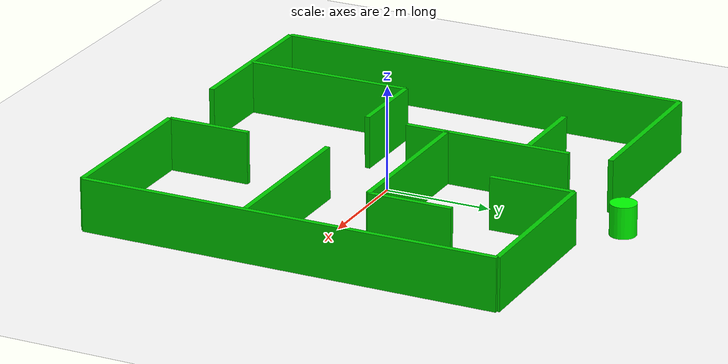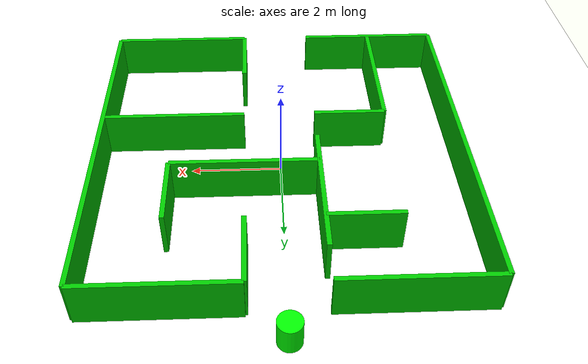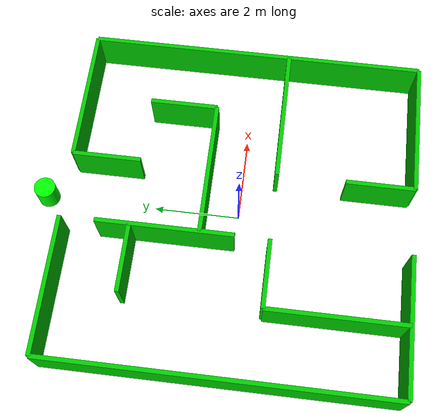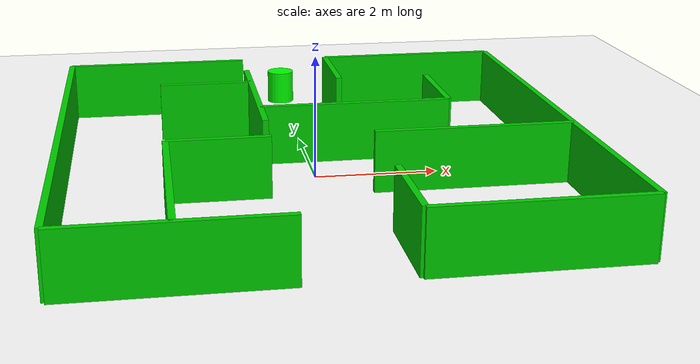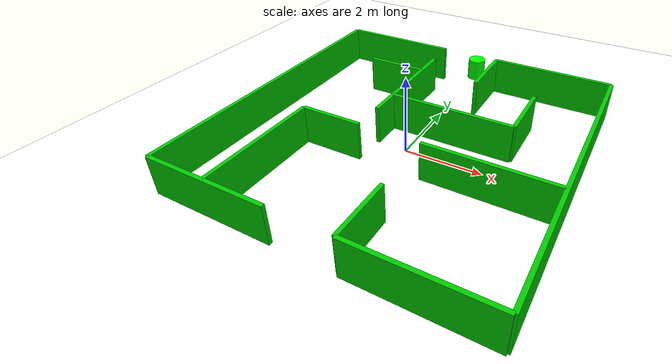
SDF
<?xml version="1.0" ?>
<sdf version="1.8">
<world name="maze_world">

  <!-- GAZEBO HARMONIC / JAZZY READY -->

  <physics name="1ms" type="ignored">
    <max_step_size>0.001</max_step_size>
    <real_time_factor>1.0</real_time_factor>
  </physics>

  <plugin filename="gz-sim-physics-system"
          name="gz::sim::systems::Physics"/>

  <plugin filename="gz-sim-user-commands-system"
          name="gz::sim::systems::UserCommands"/>

  <plugin filename="gz-sim-scene-broadcaster-system"
          name="gz::sim::systems::SceneBroadcaster"/>

  <plugin filename="gz-sim-sensors-system"
          name="gz::sim::systems::Sensors"/>

  <!-- LIGHT -->

  <light type="directional" name="sun">
    <cast_shadows>true</cast_shadows>
    <pose>0 0 10 0 0 0</pose>
    <diffuse>1 1 1 1</diffuse>
    <specular>0.3 0.3 0.3 1</specular>
    <direction>-0.5 0.1 -0.9</direction>
  </light>

  <!-- WHITE FLOOR -->

  <model name="ground_plane">
    <static>true</static>
    <link name="link">

      <collision name="collision">
        <geometry>
          <plane>
            <normal>0 0 1</normal>
            <size>20 20</size>
          </plane>
        </geometry>
      </collision>

      <visual name="visual">
        <geometry>
          <plane>
            <normal>0 0 1</normal>
            <size>20 20</size>
          </plane>
        </geometry>

        <material>
          <ambient>1 1 1 1</ambient>
          <diffuse>1 1 1 1</diffuse>
        </material>
      </visual>

    </link>
  </model>

  <!-- WALL TEMPLATE STYLE -->
  <!-- Green Walls -->

  <!-- OUTER WALLS -->

  <model name="left_wall">
    <static>true</static>
    <pose>-4 0 0.5 0 0 0</pose>
    <link name="link">
      <collision name="c">
        <geometry><box><size>0.1 8 1</size></box></geometry>
      </collision>
      <visual name="v">
        <geometry><box><size>0.1 8 1</size></box></geometry>
        <material>
          <ambient>0 0.8 0 1</ambient>
          <diffuse>0 0.8 0 1</diffuse>
        </material>
      </visual>
    </link>
  </model>

  <model name="right_wall">
    <static>true</static>
    <pose>4 0 0.5 0 0 0</pose>
    <link name="link">
      <collision name="c">
        <geometry><box><size>0.1 8 1</size></box></geometry>
      </collision>
      <visual name="v">
        <geometry><box><size>0.1 8 1</size></box></geometry>
        <material>
          <ambient>0 0.8 0 1</ambient>
          <diffuse>0 0.8 0 1</diffuse>
        </material>
      </visual>
    </link>
  </model>

  <!-- TOP split wall (exit gap in center) -->
  <model name="top_left">
    <static>true</static>
    <pose>-2.4 4 0.5 0 0 0</pose>
    <link name="link">
      <collision name="c">
        <geometry><box><size>3.2 0.1 1</size></box></geometry>
      </collision>
      <visual name="v">
        <geometry><box><size>3.2 0.1 1</size></box></geometry>
        <material>
          <ambient>0 0.8 0 1</ambient>
          <diffuse>0 0.8 0 1</diffuse>
        </material>
      </visual>
    </link>
  </model>

  <model name="top_right">
    <static>true</static>
    <pose>2.4 4 0.5 0 0 0</pose>
    <link name="link">
      <collision name="c">
        <geometry><box><size>3.2 0.1 1</size></box></geometry>
      </collision>
      <visual name="v">
        <geometry><box><size>3.2 0.1 1</size></box></geometry>
        <material>
          <ambient>0 0.8 0 1</ambient>
          <diffuse>0 0.8 0 1</diffuse>
        </material>
      </visual>
    </link>
  </model>

  <!-- BOTTOM split wall (spawn gap center) -->
  <model name="bottom_left">
    <static>true</static>
    <pose>-2.4 -4 0.5 0 0 0</pose>
    <link name="link">
      <collision name="c">
        <geometry><box><size>3.2 0.1 1</size></box></geometry>
      </collision>
      <visual name="v">
        <geometry><box><size>3.2 0.1 1</size></box></geometry>
        <material>
          <ambient>0 0.8 0 1</ambient>
          <diffuse>0 0.8 0 1</diffuse>
        </material>
      </visual>
    </link>
  </model>

  <model name="bottom_right">
    <static>true</static>
    <pose>2.4 -4 0.5 0 0 0</pose>
    <link name="link">
      <collision name="c">
        <geometry><box><size>3.2 0.1 1</size></box></geometry>
      </collision>
      <visual name="v">
        <geometry><box><size>3.2 0.1 1</size></box></geometry>
        <material>
          <ambient>0 0.8 0 1</ambient>
          <diffuse>0 0.8 0 1</diffuse>
        </material>
      </visual>
    </link>
  </model>

  <!-- INNER MAZE -->

  <model name="h1">
    <static>true</static>
    <pose>-1.6 2.4 0.5 0 0 0</pose>
    <link name="link">
      <collision name="c"><geometry><box><size>1.6 0.1 1</size></box></geometry></collision>
      <visual name="v">
        <geometry><box><size>1.6 0.1 1</size></box></geometry>
        <material><ambient>0 0.8 0 1</ambient><diffuse>0 0.8 0 1</diffuse></material>
      </visual>
    </link>
  </model>

  <model name="h2">
    <static>true</static>
    <pose>0.8 0.8 0.5 0 0 0</pose>
    <link name="link">
      <collision name="c"><geometry><box><size>3.2 0.1 1</size></box></geometry></collision>
      <visual name="v">
        <geometry><box><size>3.2 0.1 1</size></box></geometry>
        <material><ambient>0 0.8 0 1</ambient><diffuse>0 0.8 0 1</diffuse></material>
      </visual>
    </link>
  </model>

  <model name="h3">
    <static>true</static>
    <pose>-1.6 -0.8 0.5 0 0 0</pose>
    <link name="link">
      <collision name="c"><geometry><box><size>1.6 0.1 1</size></box></geometry></collision>
      <visual name="v">
        <geometry><box><size>1.6 0.1 1</size></box></geometry>
        <material><ambient>0 0.8 0 1</ambient><diffuse>0 0.8 0 1</diffuse></material>
      </visual>
    </link>
  </model>

  <model name="h4">
    <static>true</static>
    <pose>2.4 -0.8 0.5 0 0 0</pose>
    <link name="link">
      <collision name="c"><geometry><box><size>3.2 0.1 1</size></box></geometry></collision>
      <visual name="v">
        <geometry><box><size>3.2 0.1 1</size></box></geometry>
        <material><ambient>0 0.8 0 1</ambient><diffuse>0 0.8 0 1</diffuse></material>
      </visual>
    </link>
  </model>

  <model name="v1">
    <static>true</static>
    <pose>-2.4 -2.4 0.5 0 0 0</pose>
    <link name="link">
      <collision name="c"><geometry><box><size>0.1 3.2 1</size></box></geometry></collision>
      <visual name="v">
        <geometry><box><size>0.1 3.2 1</size></box></geometry>
        <material><ambient>0 0.8 0 1</ambient><diffuse>0 0.8 0 1</diffuse></material>
      </visual>
    </link>
  </model>

  <model name="v2">
    <static>true</static>
    <pose>-0.8 1.6 0.5 0 0 0</pose>
    <link name="link">
      <collision name="c"><geometry><box><size>0.1 3.2 1</size></box></geometry></collision>
      <visual name="v">
        <geometry><box><size>0.1 3.2 1</size></box></geometry>
        <material><ambient>0 0.8 0 1</ambient><diffuse>0 0.8 0 1</diffuse></material>
      </visual>
    </link>
  </model>

  <model name="v3">
    <static>true</static>
    <pose>0.8 3.2 0.5 0 0 0</pose>
    <link name="link">
      <collision name="c"><geometry><box><size>0.1 1.6 1</size></box></geometry></collision>
      <visual name="v">
        <geometry><box><size>0.1 1.6 1</size></box></geometry>
        <material><ambient>0 0.8 0 1</ambient><diffuse>0 0.8 0 1</diffuse></material>
      </visual>
    </link>
  </model>

  <model name="v4">
    <static>true</static>
    <pose>0.8 -3.2 0.5 0 0 0</pose>
    <link name="link">
      <collision name="c"><geometry><box><size>0.1 1.6 1</size></box></geometry></collision>
      <visual name="v">
        <geometry><box><size>0.1 1.6 1</size></box></geometry>
        <material><ambient>0 0.8 0 1</ambient><diffuse>0 0.8 0 1</diffuse></material>
      </visual>
    </link>
  </model>

  <model name="v5">
    <static>true</static>
    <pose>2.4 1.6 0.5 0 0 0</pose>
    <link name="link">
      <collision name="c"><geometry><box><size>0.1 1.6 1</size></box></geometry></collision>
      <visual name="v">
        <geometry><box><size>0.1 1.6 1</size></box></geometry>
        <material><ambient>0 0.8 0 1</ambient><diffuse>0 0.8 0 1</diffuse></material>
      </visual>
    </link>
  </model>

  <!-- GOAL -->

  <model name="goal_marker">
    <static>true</static>
    <pose>0 4.6 0.3 0 0 0</pose>
    <link name="link">
      <visual name="visual">
        <geometry>
          <cylinder>
            <radius>0.25</radius>
            <length>0.6</length>
          </cylinder>
        </geometry>
        <material>
          <ambient>0 1 0 1</ambient>
          <diffuse>0 1 0 1</diffuse>
        </material>
      </visual>
    </link>
  </model>

</world>
</sdf>
